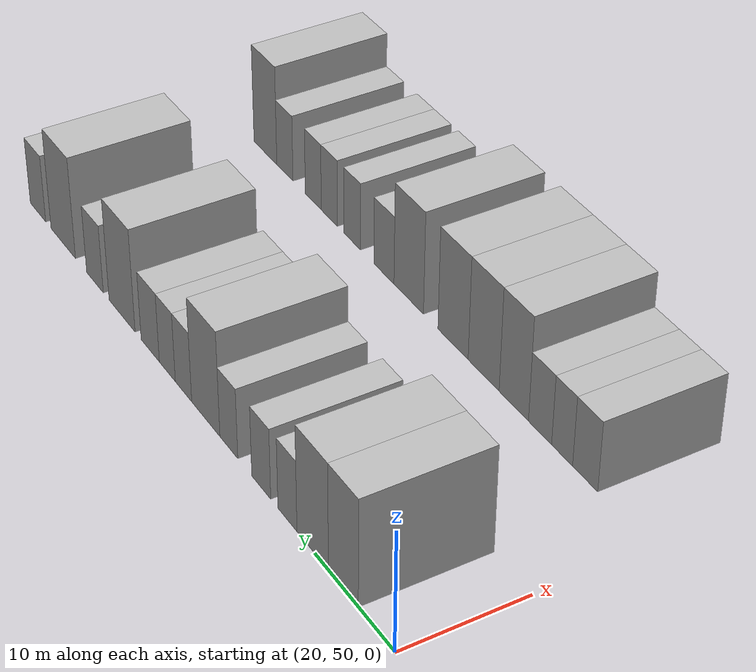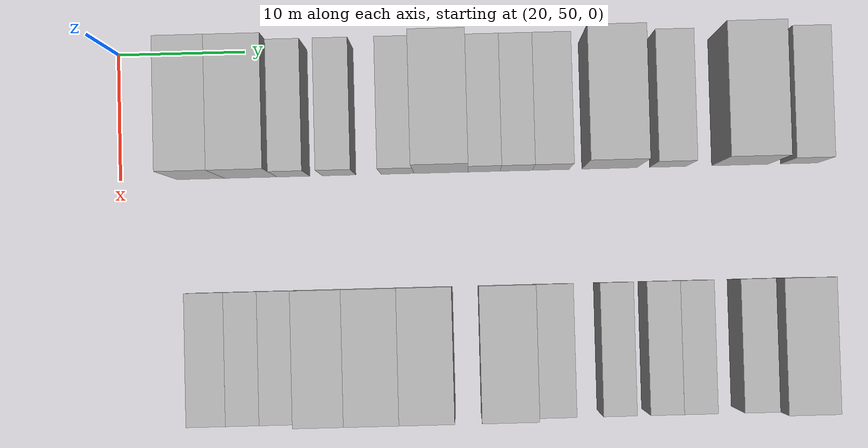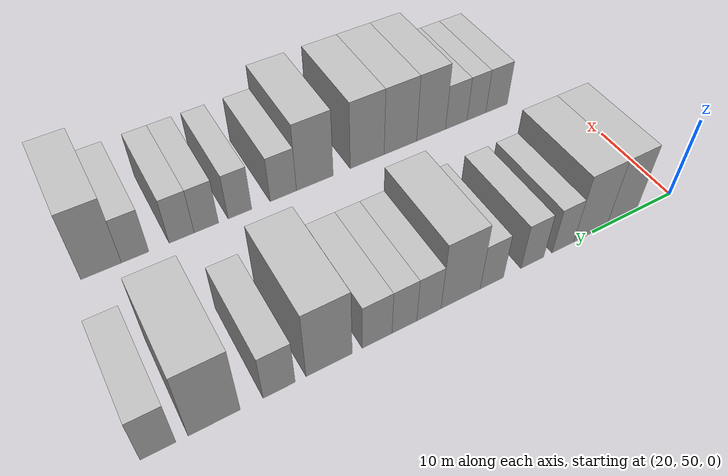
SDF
<sdf version="1.6">
 <world name="default">
  <model name="building_66">
   <static>1</static>
   <pose>25.0000 56.3589 0 0.000000 0.000000 0.000000</pose>
   <link name="link">
    <pose>0 0 4.50 0 0 0</pose>
    <collision name="collision"><geometry><box><size>10.0000 3.7856 9.0000</size></box></geometry></collision>
    <visual name="visual">
     <cast_shadows>0</cast_shadows>
     <geometry><box><size>10.0000 3.7856 9.0000</size></box></geometry>
     <material>
      <script>
       <uri>model://HANNAS_wall/materials/scripts</uri>
       <uri>model://HANNAS_wall/materials/textures</uri>
       <name>vrc/HANNAS_wall</name>
      </script>
     </material>
    </visual>
   </link>
  </model>
  <model name="building_67">
   <static>1</static>
   <pose>25.0000 60.3233 0 0.000000 0.000000 0.000000</pose>
   <link name="link">
    <pose>0 0 4.50 0 0 0</pose>
    <collision name="collision"><geometry><box><size>10.0000 4.1433 9.0000</size></box></geometry></collision>
    <visual name="visual">
     <cast_shadows>0</cast_shadows>
     <geometry><box><size>10.0000 4.1433 9.0000</size></box></geometry>
     <material>
      <script>
       <uri>model://HANNAS_wall/materials/scripts</uri>
       <uri>model://HANNAS_wall/materials/textures</uri>
       <name>vrc/HANNAS_wall</name>
      </script>
     </material>
    </visual>
   </link>
  </model>
  <model name="building_68">
   <static>1</static>
   <pose>25.0000 63.6815 0 0.000000 0.000000 0.000000</pose>
   <link name="link">
    <pose>0 0 3.00 0 0 0</pose>
    <collision name="collision"><geometry><box><size>10.0000 2.5730 6.0000</size></box></geometry></collision>
    <visual name="visual">
     <cast_shadows>0</cast_shadows>
     <geometry><box><size>10.0000 2.5730 6.0000</size></box></geometry>
     <material>
      <script>
       <uri>model://HANNAS_wall/materials/scripts</uri>
       <uri>model://HANNAS_wall/materials/textures</uri>
       <name>vrc/HANNAS_wall</name>
      </script>
     </material>
    </visual>
   </link>
  </model>
  <model name="building_69">
   <static>1</static>
   <pose>25.0000 67.2917 0 0.000000 0.000000 0.000000</pose>
   <link name="link">
    <pose>0 0 3.00 0 0 0</pose>
    <collision name="collision"><geometry><box><size>10.0000 2.6474 6.0000</size></box></geometry></collision>
    <visual name="visual">
     <cast_shadows>0</cast_shadows>
     <geometry><box><size>10.0000 2.6474 6.0000</size></box></geometry>
     <material>
      <script>
       <uri>model://HANNAS_wall/materials/scripts</uri>
       <uri>model://HANNAS_wall/materials/textures</uri>
       <name>vrc/HANNAS_wall</name>
      </script>
     </material>
    </visual>
   </link>
  </model>
  <model name="building_70">
   <static>1</static>
   <pose>25.0000 71.9206 0 0.000000 0.000000 0.000000</pose>
   <link name="link">
    <pose>0 0 3.00 0 0 0</pose>
    <collision name="collision"><geometry><box><size>10.0000 2.6103 6.0000</size></box></geometry></collision>
    <visual name="visual">
     <cast_shadows>0</cast_shadows>
     <geometry><box><size>10.0000 2.6103 6.0000</size></box></geometry>
     <material>
      <script>
       <uri>model://HANNAS_wall/materials/scripts</uri>
       <uri>model://HANNAS_wall/materials/textures</uri>
       <name>vrc/HANNAS_wall</name>
      </script>
     </material>
    </visual>
   </link>
  </model>
  <model name="building_71">
   <static>1</static>
   <pose>25.0000 75.3492 0 0.000000 0.000000 0.000000</pose>
   <link name="link">
    <pose>0 0 4.50 0 0 0</pose>
    <collision name="collision"><geometry><box><size>10.0000 4.2471 9.0000</size></box></geometry></collision>
    <visual name="visual">
     <cast_shadows>0</cast_shadows>
     <geometry><box><size>10.0000 4.2471 9.0000</size></box></geometry>
     <material>
      <script>
       <uri>model://HANNAS_wall/materials/scripts</uri>
       <uri>model://HANNAS_wall/materials/textures</uri>
       <name>vrc/HANNAS_wall</name>
      </script>
     </material>
    </visual>
   </link>
  </model>
  <model name="building_72">
   <static>1</static>
   <pose>25.0000 78.7423 0 0.000000 0.000000 0.000000</pose>
   <link name="link">
    <pose>0 0 3.00 0 0 0</pose>
    <collision name="collision"><geometry><box><size>10.0000 2.5389 6.0000</size></box></geometry></collision>
    <visual name="visual">
     <cast_shadows>0</cast_shadows>
     <geometry><box><size>10.0000 2.5389 6.0000</size></box></geometry>
     <material>
      <script>
       <uri>model://HANNAS_wall/materials/scripts</uri>
       <uri>model://HANNAS_wall/materials/textures</uri>
       <name>vrc/HANNAS_wall</name>
      </script>
     </material>
    </visual>
   </link>
  </model>
  <model name="building_73">
   <static>1</static>
   <pose>25.0000 81.2776 0 0.000000 0.000000 0.000000</pose>
   <link name="link">
    <pose>0 0 3.00 0 0 0</pose>
    <collision name="collision"><geometry><box><size>10.0000 2.5317 6.0000</size></box></geometry></collision>
    <visual name="visual">
     <cast_shadows>0</cast_shadows>
     <geometry><box><size>10.0000 2.5317 6.0000</size></box></geometry>
     <material>
      <script>
       <uri>model://HANNAS_wall/materials/scripts</uri>
       <uri>model://HANNAS_wall/materials/textures</uri>
       <name>vrc/HANNAS_wall</name>
      </script>
     </material>
    </visual>
   </link>
  </model>
  <model name="building_74">
   <static>1</static>
   <pose>25.0000 84.0116 0 0.000000 0.000000 0.000000</pose>
   <link name="link">
    <pose>0 0 3.00 0 0 0</pose>
    <collision name="collision"><geometry><box><size>10.0000 2.9365 6.0000</size></box></geometry></collision>
    <visual name="visual">
     <cast_shadows>0</cast_shadows>
     <geometry><box><size>10.0000 2.9365 6.0000</size></box></geometry>
     <material>
      <script>
       <uri>model://HANNAS_wall/materials/scripts</uri>
       <uri>model://HANNAS_wall/materials/textures</uri>
       <name>vrc/HANNAS_wall</name>
      </script>
     </material>
    </visual>
   </link>
  </model>
  <model name="building_75">
   <static>1</static>
   <pose>25.0000 88.6656 0 0.000000 0.000000 0.000000</pose>
   <link name="link">
    <pose>0 0 4.50 0 0 0</pose>
    <collision name="collision"><geometry><box><size>10.0000 4.3715 9.0000</size></box></geometry></collision>
    <visual name="visual">
     <cast_shadows>0</cast_shadows>
     <geometry><box><size>10.0000 4.3715 9.0000</size></box></geometry>
     <material>
      <script>
       <uri>model://HANNAS_wall/materials/scripts</uri>
       <uri>model://HANNAS_wall/materials/textures</uri>
       <name>vrc/HANNAS_wall</name>
      </script>
     </material>
    </visual>
   </link>
  </model>
  <model name="building_76">
   <static>1</static>
   <pose>25.0000 93.3038 0 0.000000 0.000000 0.000000</pose>
   <link name="link">
    <pose>0 0 3.00 0 0 0</pose>
    <collision name="collision"><geometry><box><size>10.0000 2.9049 6.0000</size></box></geometry></collision>
    <visual name="visual">
     <cast_shadows>0</cast_shadows>
     <geometry><box><size>10.0000 2.9049 6.0000</size></box></geometry>
     <material>
      <script>
       <uri>model://HANNAS_wall/materials/scripts</uri>
       <uri>model://HANNAS_wall/materials/textures</uri>
       <name>vrc/HANNAS_wall</name>
      </script>
     </material>
    </visual>
   </link>
  </model>
  <model name="building_77">
   <static>1</static>
   <pose>25.0000 98.9863 0 0.000000 0.000000 0.000000</pose>
   <link name="link">
    <pose>0 0 4.50 0 0 0</pose>
    <collision name="collision"><geometry><box><size>10.0000 4.4600 9.0000</size></box></geometry></collision>
    <visual name="visual">
     <cast_shadows>0</cast_shadows>
     <geometry><box><size>10.0000 4.4600 9.0000</size></box></geometry>
     <material>
      <script>
       <uri>model://HANNAS_wall/materials/scripts</uri>
       <uri>model://HANNAS_wall/materials/textures</uri>
       <name>vrc/HANNAS_wall</name>
      </script>
     </material>
    </visual>
   </link>
  </model>
  <model name="building_78">
   <static>1</static>
   <pose>25.0000 103.6691 0 0.000000 0.000000 0.000000</pose>
   <link name="link">
    <pose>0 0 3.00 0 0 0</pose>
    <collision name="collision"><geometry><box><size>10.0000 2.9058 6.0000</size></box></geometry></collision>
    <visual name="visual">
     <cast_shadows>0</cast_shadows>
     <geometry><box><size>10.0000 2.9058 6.0000</size></box></geometry>
     <material>
      <script>
       <uri>model://HANNAS_wall/materials/scripts</uri>
       <uri>model://HANNAS_wall/materials/textures</uri>
       <name>vrc/HANNAS_wall</name>
      </script>
     </material>
    </visual>
   </link>
  </model>
  <model name="building_166">
   <static>1</static>
   <pose>44.0000 57.3825 0 0.000000 0.000000 0.000000</pose>
   <link name="link">
    <pose>0 0 3.00 0 0 0</pose>
    <collision name="collision"><geometry><box><size>10.0000 2.9462 6.0000</size></box></geometry></collision>
    <visual name="visual">
     <cast_shadows>0</cast_shadows>
     <geometry><box><size>10.0000 2.9462 6.0000</size></box></geometry>
     <material>
      <script>
       <uri>model://HANNAS_wall/materials/scripts</uri>
       <uri>model://HANNAS_wall/materials/textures</uri>
       <name>vrc/HANNAS_wall</name>
      </script>
     </material>
    </visual>
   </link>
  </model>
  <model name="building_167">
   <static>1</static>
   <pose>44.0000 60.1119 0 0.000000 0.000000 0.000000</pose>
   <link name="link">
    <pose>0 0 3.00 0 0 0</pose>
    <collision name="collision"><geometry><box><size>10.0000 2.5124 6.0000</size></box></geometry></collision>
    <visual name="visual">
     <cast_shadows>0</cast_shadows>
     <geometry><box><size>10.0000 2.5124 6.0000</size></box></geometry>
     <material>
      <script>
       <uri>model://HANNAS_wall/materials/scripts</uri>
       <uri>model://HANNAS_wall/materials/textures</uri>
       <name>vrc/HANNAS_wall</name>
      </script>
     </material>
    </visual>
   </link>
  </model>
  <model name="building_168">
   <static>1</static>
   <pose>44.0000 62.7855 0 0.000000 0.000000 0.000000</pose>
   <link name="link">
    <pose>0 0 3.00 0 0 0</pose>
    <collision name="collision"><geometry><box><size>10.0000 2.8349 6.0000</size></box></geometry></collision>
    <visual name="visual">
     <cast_shadows>0</cast_shadows>
     <geometry><box><size>10.0000 2.8349 6.0000</size></box></geometry>
     <material>
      <script>
       <uri>model://HANNAS_wall/materials/scripts</uri>
       <uri>model://HANNAS_wall/materials/textures</uri>
       <name>vrc/HANNAS_wall</name>
      </script>
     </material>
    </visual>
   </link>
  </model>
  <model name="building_169">
   <static>1</static>
   <pose>44.0000 66.0563 0 0.000000 0.000000 0.000000</pose>
   <link name="link">
    <pose>0 0 4.50 0 0 0</pose>
    <collision name="collision"><geometry><box><size>10.0000 3.7067 9.0000</size></box></geometry></collision>
    <visual name="visual">
     <cast_shadows>0</cast_shadows>
     <geometry><box><size>10.0000 3.7067 9.0000</size></box></geometry>
     <material>
      <script>
       <uri>model://HANNAS_wall/materials/scripts</uri>
       <uri>model://HANNAS_wall/materials/textures</uri>
       <name>vrc/HANNAS_wall</name>
      </script>
     </material>
    </visual>
   </link>
  </model>
  <model name="building_170">
   <static>1</static>
   <pose>44.0000 69.9287 0 0.000000 0.000000 0.000000</pose>
   <link name="link">
    <pose>0 0 4.50 0 0 0</pose>
    <collision name="collision"><geometry><box><size>10.0000 4.0381 9.0000</size></box></geometry></collision>
    <visual name="visual">
     <cast_shadows>0</cast_shadows>
     <geometry><box><size>10.0000 4.0381 9.0000</size></box></geometry>
     <material>
      <script>
       <uri>model://HANNAS_wall/materials/scripts</uri>
       <uri>model://HANNAS_wall/materials/textures</uri>
       <name>vrc/HANNAS_wall</name>
      </script>
     </material>
    </visual>
   </link>
  </model>
  <model name="building_171">
   <static>1</static>
   <pose>44.0000 73.9835 0 0.000000 0.000000 0.000000</pose>
   <link name="link">
    <pose>0 0 4.50 0 0 0</pose>
    <collision name="collision"><geometry><box><size>10.0000 4.0714 9.0000</size></box></geometry></collision>
    <visual name="visual">
     <cast_shadows>0</cast_shadows>
     <geometry><box><size>10.0000 4.0714 9.0000</size></box></geometry>
     <material>
      <script>
       <uri>model://HANNAS_wall/materials/scripts</uri>
       <uri>model://HANNAS_wall/materials/textures</uri>
       <name>vrc/HANNAS_wall</name>
      </script>
     </material>
    </visual>
   </link>
  </model>
  <model name="building_172">
   <static>1</static>
   <pose>44.0000 80.1145 0 0.000000 0.000000 0.000000</pose>
   <link name="link">
    <pose>0 0 4.50 0 0 0</pose>
    <collision name="collision"><geometry><box><size>10.0000 4.1907 9.0000</size></box></geometry></collision>
    <visual name="visual">
     <cast_shadows>0</cast_shadows>
     <geometry><box><size>10.0000 4.1907 9.0000</size></box></geometry>
     <material>
      <script>
       <uri>model://HANNAS_wall/materials/scripts</uri>
       <uri>model://HANNAS_wall/materials/textures</uri>
       <name>vrc/HANNAS_wall</name>
      </script>
     </material>
    </visual>
   </link>
  </model>
  <model name="building_173">
   <static>1</static>
   <pose>44.0000 83.6709 0 0.000000 0.000000 0.000000</pose>
   <link name="link">
    <pose>0 0 3.00 0 0 0</pose>
    <collision name="collision"><geometry><box><size>10.0000 2.9221 6.0000</size></box></geometry></collision>
    <visual name="visual">
     <cast_shadows>0</cast_shadows>
     <geometry><box><size>10.0000 2.9221 6.0000</size></box></geometry>
     <material>
      <script>
       <uri>model://HANNAS_wall/materials/scripts</uri>
       <uri>model://HANNAS_wall/materials/textures</uri>
       <name>vrc/HANNAS_wall</name>
      </script>
     </material>
    </visual>
   </link>
  </model>
  <model name="building_174">
   <static>1</static>
   <pose>44.0000 88.3877 0 0.000000 0.000000 0.000000</pose>
   <link name="link">
    <pose>0 0 3.00 0 0 0</pose>
    <collision name="collision"><geometry><box><size>10.0000 2.5116 6.0000</size></box></geometry></collision>
    <visual name="visual">
     <cast_shadows>0</cast_shadows>
     <geometry><box><size>10.0000 2.5116 6.0000</size></box></geometry>
     <material>
      <script>
       <uri>model://HANNAS_wall/materials/scripts</uri>
       <uri>model://HANNAS_wall/materials/textures</uri>
       <name>vrc/HANNAS_wall</name>
      </script>
     </material>
    </visual>
   </link>
  </model>
  <model name="building_175">
   <static>1</static>
   <pose>44.0000 91.9021 0 0.000000 0.000000 0.000000</pose>
   <link name="link">
    <pose>0 0 3.00 0 0 0</pose>
    <collision name="collision"><geometry><box><size>10.0000 2.5170 6.0000</size></box></geometry></collision>
    <visual name="visual">
     <cast_shadows>0</cast_shadows>
     <geometry><box><size>10.0000 2.5170 6.0000</size></box></geometry>
     <material>
      <script>
       <uri>model://HANNAS_wall/materials/scripts</uri>
       <uri>model://HANNAS_wall/materials/textures</uri>
       <name>vrc/HANNAS_wall</name>
      </script>
     </material>
    </visual>
   </link>
  </model>
  <model name="building_176">
   <static>1</static>
   <pose>44.0000 94.4269 0 0.000000 0.000000 0.000000</pose>
   <link name="link">
    <pose>0 0 3.00 0 0 0</pose>
    <collision name="collision"><geometry><box><size>10.0000 2.5325 6.0000</size></box></geometry></collision>
    <visual name="visual">
     <cast_shadows>0</cast_shadows>
     <geometry><box><size>10.0000 2.5325 6.0000</size></box></geometry>
     <material>
      <script>
       <uri>model://HANNAS_wall/materials/scripts</uri>
       <uri>model://HANNAS_wall/materials/textures</uri>
       <name>vrc/HANNAS_wall</name>
      </script>
     </material>
    </visual>
   </link>
  </model>
  <model name="building_177">
   <static>1</static>
   <pose>44.0000 99.0194 0 0.000000 0.000000 0.000000</pose>
   <link name="link">
    <pose>0 0 3.00 0 0 0</pose>
    <collision name="collision"><geometry><box><size>10.0000 2.6525 6.0000</size></box></geometry></collision>
    <visual name="visual">
     <cast_shadows>0</cast_shadows>
     <geometry><box><size>10.0000 2.6525 6.0000</size></box></geometry>
     <material>
      <script>
       <uri>model://HANNAS_wall/materials/scripts</uri>
       <uri>model://HANNAS_wall/materials/textures</uri>
       <name>vrc/HANNAS_wall</name>
      </script>
     </material>
    </visual>
   </link>
  </model>
  <model name="building_178">
   <static>1</static>
   <pose>44.0000 102.2600 0 0.000000 0.000000 0.000000</pose>
   <link name="link">
    <pose>0 0 4.50 0 0 0</pose>
    <collision name="collision"><geometry><box><size>10.0000 3.8287 9.0000</size></box></geometry></collision>
    <visual name="visual">
     <cast_shadows>0</cast_shadows>
     <geometry><box><size>10.0000 3.8287 9.0000</size></box></geometry>
     <material>
      <script>
       <uri>model://HANNAS_wall/materials/scripts</uri>
       <uri>model://HANNAS_wall/materials/textures</uri>
       <name>vrc/HANNAS_wall</name>
      </script>
     </material>
    </visual>
   </link>
  </model>
 </world>
</sdf>
